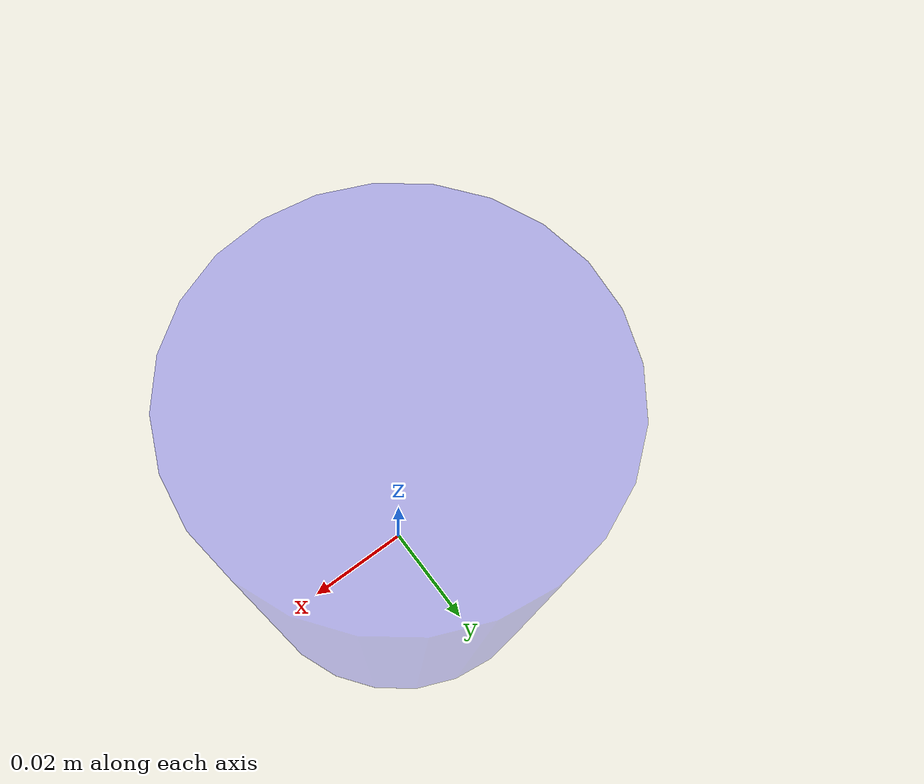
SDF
<?xml version='1.0'?>
<sdf version='1.7'>
  <model name='plate'>
    <link name='base_link'>
      <inertial>
        <mass>0.05</mass>
        <inertia>
          <ixx>3.17e-5</ixx>
          <ixy>0</ixy>
          <ixz>0</ixz>
          <iyy>3.17e-5</iyy>
          <iyz>0</iyz>
          <izz>2.25e-5</izz>
        </inertia>
        <pose>0 0 0 0 -0 0</pose>
      </inertial>
      <pose>0 0 0 0 0 0</pose>
      <visual name='visual'>
        <pose>0 0 0.035 0 0 0</pose>
        <geometry>
            <cylinder>
                <length>0.07</length>
                <radius>0.03</radius>
            </cylinder>
        </geometry>
        <material>
          <diffuse>0.1 0.1 0.95 0.3</diffuse>
        </material>
      </visual>
      <collision name='collision'>
        <pose>0 0 0.035 0 0 0</pose>
        <geometry>
            <cylinder>
                <length>0.07</length>
                <radius>0.03</radius>
            </cylinder>
        </geometry>
      </collision>
    </link>
  </model>
</sdf>
